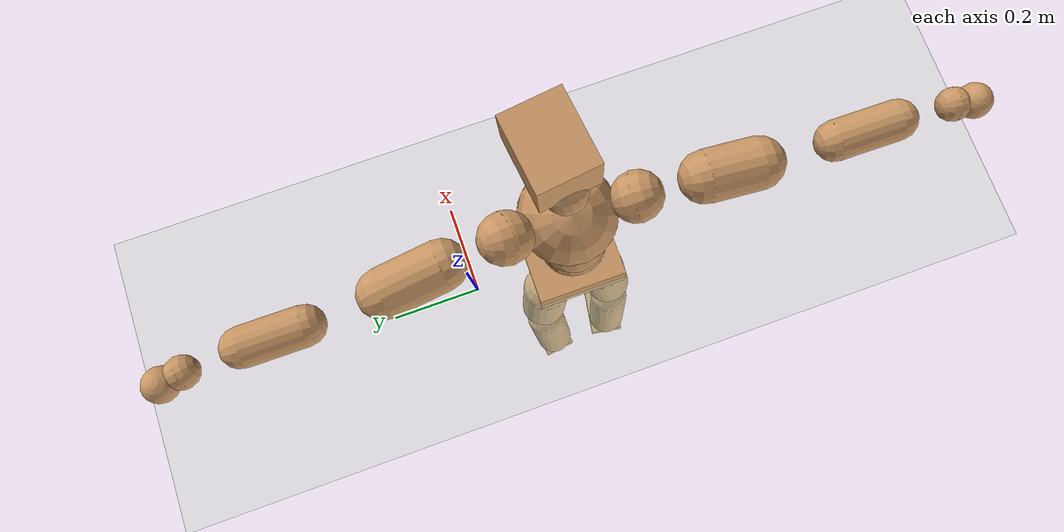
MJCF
<mujoco model="humanoid">
  <compiler coordinate="local" angle="radian"/>
  <default>
    <joint damping="0.0" armature="0.01" stiffness="0.0" limited="true"/>
    <geom conaffinity="1" condim="3" contype="7" margin="0.001" rgba="0.8 0.6 .4 1"/>
  </default>
  <asset>
    <texture type="skybox" builtin="gradient" rgb1=".4 .5 .6" rgb2="0 0 0" width="100" height="100"/>
    <texture builtin="flat" height="1278" mark="cross" markrgb="1 1 1" name="texgeom" random="0.01" rgb1="0.8 0.6 0.4" rgb2="0.8 0.6 0.4" type="cube" width="127"/>
    <texture builtin="checker" height="100" name="texplane" rgb1="0 0 0" rgb2="0.8 0.8 0.8" type="2d" width="100"/>
    <material name="MatPlane" reflectance="0.5" shininess="1" specular="1" texrepeat="60 60" texture="texplane"/>
    <material name="geom" texture="texgeom" texuniform="true"/>
  </asset>
  <worldbody>
    <light cutoff="100" diffuse="1 1 1" dir="-0 0 -1.3" directional="true" exponent="1" pos="0 0 1.3" specular=".1 .1 .1"/>
    <geom conaffinity="1" condim="3" name="floor" pos="0 0 0" rgba="0.8 0.9 0.8 1" size="100 100 .2" type="plane" material="MatPlane"/>
    <body name="Pelvis" pos="-0.0015 -0.23 0.0193">
      <freejoint name="Pelvis"/>
      <geom type="box" contype="1" conaffinity="1" density="5359.375424" pos="-0.0071 0.0000 -0.0133" size="0.0779 0.1028 0.0419" quat="1.0000 0.0000 0.0000 -0.0000" name="Pelvis"/>
      <body name="L_Hip" pos="-0.016 0.0666 -0.0951">
        <joint name="L_Hip_x" type="hinge" pos="0 0 0" axis="1 0 0" stiffness="1600" damping="160" armature="0.02" range="-180.0000 180.0000"/>
        <joint name="L_Hip_y" type="hinge" pos="0 0 0" axis="0 1 0" stiffness="1600" damping="160" armature="0.02" range="-180.0000 180.0000"/>
        <joint name="L_Hip_z" type="hinge" pos="0 0 0" axis="0 0 1" stiffness="1600" damping="160" armature="0.02" range="-180.0000 180.0000"/>
        <geom type="capsule" contype="1" conaffinity="1" density="2040.816327" size="0.0577" fromto="-0.0014 0.0076 -0.0873 -0.0048 0.0258 -0.2983" name="L_Hip"/>
        <body name="L_Knee" pos="-0.0062 0.0334 -0.3857">
          <joint name="L_Knee_x" type="hinge" pos="0 0 0" axis="1 0 0" stiffness="1600" damping="160" armature="0.02" range="-180.0000 180.0000"/>
          <joint name="L_Knee_y" type="hinge" pos="0 0 0" axis="0 1 0" stiffness="1600" damping="160" armature="0.02" range="-180.0000 180.0000"/>
          <joint name="L_Knee_z" type="hinge" pos="0 0 0" axis="0 0 1" stiffness="1600" damping="160" armature="0.02" range="-180.0000 180.0000"/>
          <geom type="capsule" contype="1" conaffinity="1" density="1234.567901" size="0.0521" fromto="-0.0087 -0.0028 -0.0816 -0.0351 -0.0112 -0.3289" name="L_Knee"/>
          <body name="L_Ankle" pos="-0.0438 -0.014 -0.4105">
            <joint name="L_Ankle_x" type="hinge" pos="0 0 0" axis="1 0 0" stiffness="1600" damping="160" armature="0.02" range="-180.0000 180.0000"/>
            <joint name="L_Ankle_y" type="hinge" pos="0 0 0" axis="0 1 0" stiffness="1600" damping="160" armature="0.02" range="-180.0000 180.0000"/>
            <joint name="L_Ankle_z" type="hinge" pos="0 0 0" axis="0 0 1" stiffness="1600" damping="160" armature="0.02" range="-180.0000 180.0000"/>
            <geom type="box" contype="1" conaffinity="1" density="1000.000014" pos="0.0604 0.0090 -0.0287" size="0.0853 0.0454 0.0214" quat="0.9972 0.0000 0.0000 0.0742" name="L_Ankle"/>
            <body name="L_Toe" pos="0.1209 0.0181 -0.0574">
              <joint name="L_Toe_x" type="hinge" pos="0 0 0" axis="1 0 0" stiffness="1000" damping="100" armature="0.02" range="-180.0000 180.0000"/>
              <joint name="L_Toe_y" type="hinge" pos="0 0 0" axis="0 1 0" stiffness="1000" damping="100" armature="0.02" range="-180.0000 180.0000"/>
              <joint name="L_Toe_z" type="hinge" pos="0 0 0" axis="0 0 1" stiffness="1000" damping="100" armature="0.02" range="-180.0000 180.0000"/>
              <geom type="box" contype="1" conaffinity="1" density="8571836.640656" pos="0.0000 0.0000 0.0280" size="0.001 0.0023 0.001" quat="0.9967 0.0000 0.0000 0.0809" name="L_Toe"/>
            </body>
          </body>
        </body>
      </body>
      <body name="R_Hip" pos="-0.0113 -0.0632 -0.0946">
        <joint name="R_Hip_x" type="hinge" pos="0 0 0" axis="1 0 0" stiffness="1600" damping="160" armature="0.02" range="-180.0000 180.0000"/>
        <joint name="R_Hip_y" type="hinge" pos="0 0 0" axis="0 1 0" stiffness="1600" damping="160" armature="0.02" range="-180.0000 180.0000"/>
        <joint name="R_Hip_z" type="hinge" pos="0 0 0" axis="0 0 1" stiffness="1600" damping="160" armature="0.02" range="-180.0000 180.0000"/>
        <geom type="capsule" contype="1" conaffinity="1" density="2040.816327" size="0.0569" fromto="-0.0021 -0.0087 -0.0864 -0.0074 -0.0308 -0.3055" name="R_Hip"/>
        <body name="R_Knee" pos="-0.0094 -0.0395 -0.392">
          <joint name="R_Knee_x" type="hinge" pos="0 0 0" axis="1 0 0" stiffness="1600" damping="160" armature="0.02" range="-180.0000 180.0000"/>
          <joint name="R_Knee_y" type="hinge" pos="0 0 0" axis="0 1 0" stiffness="1600" damping="160" armature="0.02" range="-180.0000 180.0000"/>
          <joint name="R_Knee_z" type="hinge" pos="0 0 0" axis="0 0 1" stiffness="1600" damping="160" armature="0.02" range="-180.0000 180.0000"/>
          <geom type="capsule" contype="1" conaffinity="1" density="1234.567901" size="0.0523" fromto="-0.0082 0.0035 -0.0819 -0.0328 0.0138 -0.3271" name="R_Knee"/>
          <body name="R_Ankle" pos="-0.0411 0.0173 -0.409">
            <joint name="R_Ankle_x" type="hinge" pos="0 0 0" axis="1 0 0" stiffness="1600" damping="160" armature="0.02" range="-180.0000 180.0000"/>
            <joint name="R_Ankle_y" type="hinge" pos="0 0 0" axis="0 1 0" stiffness="1600" damping="160" armature="0.02" range="-180.0000 180.0000"/>
            <joint name="R_Ankle_z" type="hinge" pos="0 0 0" axis="0 0 1" stiffness="1600" damping="160" armature="0.02" range="-180.0000 180.0000"/>
            <geom type="box" contype="1" conaffinity="1" density="999.999968" pos="0.0623 -0.0099 -0.0242" size="0.0874 0.048 0.0206" quat="0.9969 0.0000 0.0000 -0.0785" name="R_Ankle"/>
            <body name="R_Toe" pos="0.1246 -0.0197 -0.0485">
              <joint name="R_Toe_x" type="hinge" pos="0 0 0" axis="1 0 0" stiffness="1000" damping="100" armature="0.02" range="-180.0000 180.0000"/>
              <joint name="R_Toe_y" type="hinge" pos="0 0 0" axis="0 1 0" stiffness="1000" damping="100" armature="0.02" range="-180.0000 180.0000"/>
              <joint name="R_Toe_z" type="hinge" pos="0 0 0" axis="0 0 1" stiffness="1000" damping="100" armature="0.02" range="-180.0000 180.0000"/>
              <geom type="box" contype="1" conaffinity="1" density="8125442.941406" pos="0.0000 0.0000 0.0269" size="0.0009 0.0023 0.0012" quat="0.9976 0.0000 0.0000 -0.0695" name="R_Toe"/>
            </body>
          </body>
        </body>
      </body>
      <body name="Torso" pos="-0.0155 -0.0033 0.1096">
        <joint name="Torso_x" type="hinge" pos="0 0 0" axis="1 0 0" stiffness="2000" damping="200" armature="0.02" range="-180.0000 180.0000"/>
        <joint name="Torso_y" type="hinge" pos="0 0 0" axis="0 1 0" stiffness="2000" damping="200" armature="0.02" range="-180.0000 180.0000"/>
        <joint name="Torso_z" type="hinge" pos="0 0 0" axis="0 0 1" stiffness="2000" damping="200" armature="0.02" range="-180.0000 180.0000"/>
        <geom type="capsule" contype="1" conaffinity="1" density="2040.816327" size="0.0707" fromto="0.0018 0.0023 0.0717 0.0018 0.0024 0.0737" name="Torso"/>
        <body name="Spine" pos="0.0036 0.0047 0.1454">
          <joint name="Spine_x" type="hinge" pos="0 0 0" axis="1 0 0" stiffness="2000" damping="200" armature="0.02" range="-180.0000 180.0000"/>
          <joint name="Spine_y" type="hinge" pos="0 0 0" axis="0 1 0" stiffness="2000" damping="200" armature="0.02" range="-180.0000 180.0000"/>
          <joint name="Spine_z" type="hinge" pos="0 0 0" axis="0 0 1" stiffness="2000" damping="200" armature="0.02" range="-180.0000 180.0000"/>
          <geom type="capsule" contype="1" conaffinity="1" density="2040.816327" size="0.072" fromto="0.0362 0.0034 0.0621 -0.0050 -0.0005 -0.0085" name="Spine"/>
          <body name="Chest" pos="0.0313 0.0029 0.0536">
            <joint name="Chest_x" type="hinge" pos="0 0 0" axis="1 0 0" stiffness="2000" damping="200" armature="0.02" range="-180.0000 180.0000"/>
            <joint name="Chest_y" type="hinge" pos="0 0 0" axis="0 1 0" stiffness="2000" damping="200" armature="0.02" range="-180.0000 180.0000"/>
            <joint name="Chest_z" type="hinge" pos="0 0 0" axis="0 0 1" stiffness="2000" damping="200" armature="0.02" range="-180.0000 180.0000"/>
            <geom type="capsule" contype="1" conaffinity="1" density="2040.816327" size="0.0968" fromto="-0.0275 -0.0004 0.0928 -0.0183 -0.0002 0.0620" name="Chest"/>
            <body name="Neck" pos="-0.054 -0.0009 0.2198">
              <joint name="Neck_x" type="hinge" pos="0 0 0" axis="1 0 0" stiffness="1000" damping="100" armature="0.02" range="-180.0000 180.0000"/>
              <joint name="Neck_y" type="hinge" pos="0 0 0" axis="0 1 0" stiffness="1000" damping="100" armature="0.02" range="-180.0000 180.0000"/>
              <joint name="Neck_z" type="hinge" pos="0 0 0" axis="0 0 1" stiffness="1000" damping="100" armature="0.02" range="-180.0000 180.0000"/>
              <geom type="capsule" contype="1" conaffinity="1" density="1000" size="0.0424" fromto="0.0261 0.0024 0.0320 0.0273 0.0025 0.0336" name="Neck"/>
              <body name="Head" pos="0.0534 0.0048 0.0656">
                <joint name="Head_x" type="hinge" pos="0 0 0" axis="1 0 0" stiffness="1000" damping="100" armature="0.02" range="-180.0000 180.0000"/>
                <joint name="Head_y" type="hinge" pos="0 0 0" axis="0 1 0" stiffness="1000" damping="100" armature="0.02" range="-180.0000 180.0000"/>
                <joint name="Head_z" type="hinge" pos="0 0 0" axis="0 0 1" stiffness="1000" damping="100" armature="0.02" range="-180.0000 180.0000"/>
                <geom type="box" contype="1" conaffinity="1" density="2250.000144" pos="0.0277 0.0034 0.0338" size="0.0748 0.0595 0.0519" quat="0.9981 0.0000 0.0000 0.0613" name="Head"/>
              </body>
            </body>
            <body name="L_Thorax" pos="-0.0394 0.0796 0.1239">
              <joint name="L_Thorax_x" type="hinge" pos="0 0 0" axis="1 0 0" stiffness="1000" damping="100" armature="0.02" range="-180.0000 180.0000"/>
              <joint name="L_Thorax_y" type="hinge" pos="0 0 0" axis="0 1 0" stiffness="1000" damping="100" armature="0.02" range="-180.0000 180.0000"/>
              <joint name="L_Thorax_z" type="hinge" pos="0 0 0" axis="0 0 1" stiffness="1000" damping="100" armature="0.02" range="-180.0000 180.0000"/>
              <geom type="capsule" contype="1" conaffinity="1" density="1000" size="0.0512" fromto="-0.0035 0.0480 0.0174 -0.0030 0.0413 0.0150" name="L_Thorax"/>
              <body name="L_Shoulder" pos="-0.0066 0.0892 0.0324">
                <joint name="L_Shoulder_x" type="hinge" pos="0 0 0" axis="1 0 0" stiffness="1000" damping="100" armature="0.02" range="-720.0000 720.0000"/>
                <joint name="L_Shoulder_y" type="hinge" pos="0 0 0" axis="0 1 0" stiffness="1000" damping="100" armature="0.02" range="-720.0000 720.0000"/>
                <joint name="L_Shoulder_z" type="hinge" pos="0 0 0" axis="0 0 1" stiffness="1000" damping="100" armature="0.02" range="-720.0000 720.0000"/>
                <geom type="capsule" contype="1" conaffinity="1" density="1000" size="0.0488" fromto="-0.0083 0.0783 -0.0040 -0.0203 0.1927 -0.0098" name="L_Shoulder"/>
                <body name="L_Elbow" pos="-0.0286 0.271 -0.0138">
                  <joint name="L_Elbow_x" type="hinge" pos="0 0 0" axis="1 0 0" stiffness="1000" damping="100" armature="0.02" range="-720.0000 720.0000"/>
                  <joint name="L_Elbow_y" type="hinge" pos="0 0 0" axis="0 1 0" stiffness="1000" damping="100" armature="0.02" range="-720.0000 720.0000"/>
                  <joint name="L_Elbow_z" type="hinge" pos="0 0 0" axis="0 0 1" stiffness="1000" damping="100" armature="0.02" range="-720.0000 720.0000"/>
                  <geom type="capsule" contype="1" conaffinity="1" density="1000" size="0.0386" fromto="-0.0002 0.0686 0.0026 -0.0004 0.1826 0.0069" name="L_Elbow"/>
                  <body name="L_Wrist" pos="-0.0006 0.2512 0.0095">
                    <joint name="L_Wrist_x" type="hinge" pos="0 0 0" axis="1 0 0" stiffness="600" damping="60" armature="0.02" range="-180.0000 180.0000"/>
                    <joint name="L_Wrist_y" type="hinge" pos="0 0 0" axis="0 1 0" stiffness="600" damping="60" armature="0.02" range="-180.0000 180.0000"/>
                    <joint name="L_Wrist_z" type="hinge" pos="0 0 0" axis="0 0 1" stiffness="600" damping="60" armature="0.02" range="-180.0000 180.0000"/>
                    <geom type="capsule" contype="1" conaffinity="1" density="1000" size="0.0313" fromto="-0.0068 0.0407 -0.0049 -0.0071 0.0426 -0.0051" name="L_Wrist"/>
                    <body name="L_Hand" pos="-0.0139 0.0833 -0.01">
                      <joint name="L_Hand_x" type="hinge" pos="0 0 0" axis="1 0 0" stiffness="600" damping="60" armature="0.02" range="-180.0000 180.0000"/>
                      <joint name="L_Hand_y" type="hinge" pos="0 0 0" axis="0 1 0" stiffness="600" damping="60" armature="0.02" range="-180.0000 180.0000"/>
                      <joint name="L_Hand_z" type="hinge" pos="0 0 0" axis="0 0 1" stiffness="600" damping="60" armature="0.02" range="-180.0000 180.0000"/>
                      <geom type="sphere" contype="1" conaffinity="1" density="1000" size="0.0335" pos="0.0000 0.0000 0.0000" name="L_Hand"/>
                    </body>
                  </body>
                </body>
              </body>
            </body>
            <body name="R_Thorax" pos="-0.0441 -0.0805 0.1207">
              <joint name="R_Thorax_x" type="hinge" pos="0 0 0" axis="1 0 0" stiffness="1000" damping="100" armature="0.02" range="-180.0000 180.0000"/>
              <joint name="R_Thorax_y" type="hinge" pos="0 0 0" axis="0 1 0" stiffness="1000" damping="100" armature="0.02" range="-180.0000 180.0000"/>
              <joint name="R_Thorax_z" type="hinge" pos="0 0 0" axis="0 0 1" stiffness="1000" damping="100" armature="0.02" range="-180.0000 180.0000"/>
              <geom type="capsule" contype="1" conaffinity="1" density="1000" size="0.0503" fromto="-0.0047 -0.0462 0.0169 -0.0049 -0.0481 0.0176" name="R_Thorax"/>
              <body name="R_Shoulder" pos="-0.0095 -0.0943 0.0344">
                <joint name="R_Shoulder_x" type="hinge" pos="0 0 0" axis="1 0 0" stiffness="1000" damping="100" armature="0.02" range="-720.0000 720.0000"/>
                <joint name="R_Shoulder_y" type="hinge" pos="0 0 0" axis="0 1 0" stiffness="1000" damping="100" armature="0.02" range="-720.0000 720.0000"/>
                <joint name="R_Shoulder_z" type="hinge" pos="0 0 0" axis="0 0 1" stiffness="1000" damping="100" armature="0.02" range="-720.0000 720.0000"/>
                <geom type="capsule" contype="1" conaffinity="1" density="1000" size="0.0512" fromto="-0.0055 -0.0809 -0.0051 -0.0126 -0.1841 -0.0115" name="R_Shoulder"/>
                <body name="R_Elbow" pos="-0.0181 -0.265 -0.0166">
                  <joint name="R_Elbow_x" type="hinge" pos="0 0 0" axis="1 0 0" stiffness="1000" damping="100" armature="0.02" range="-720.0000 720.0000"/>
                  <joint name="R_Elbow_y" type="hinge" pos="0 0 0" axis="0 1 0" stiffness="1000" damping="100" armature="0.02" range="-720.0000 720.0000"/>
                  <joint name="R_Elbow_z" type="hinge" pos="0 0 0" axis="0 0 1" stiffness="1000" damping="100" armature="0.02" range="-720.0000 720.0000"/>
                  <geom type="capsule" contype="1" conaffinity="1" density="1000" size="0.0392" fromto="-0.0014 -0.0691 0.0023 -0.0038 -0.1925 0.0065" name="R_Elbow"/>
                  <body name="R_Wrist" pos="-0.0052 -0.2617 0.0089">
                    <joint name="R_Wrist_x" type="hinge" pos="0 0 0" axis="1 0 0" stiffness="600" damping="60" armature="0.02" range="-180.0000 180.0000"/>
                    <joint name="R_Wrist_y" type="hinge" pos="0 0 0" axis="0 1 0" stiffness="600" damping="60" armature="0.02" range="-180.0000 180.0000"/>
                    <joint name="R_Wrist_z" type="hinge" pos="0 0 0" axis="0 0 1" stiffness="600" damping="60" armature="0.02" range="-180.0000 180.0000"/>
                    <geom type="capsule" contype="1" conaffinity="1" density="1000" size="0.0323" fromto="-0.0054 -0.0416 -0.0037 -0.0056 -0.0436 -0.0039" name="R_Wrist"/>
                    <body name="R_Hand" pos="-0.011 -0.0852 -0.0076">
                      <joint name="R_Hand_x" type="hinge" pos="0 0 0" axis="1 0 0" stiffness="600" damping="60" armature="0.02" range="-180.0000 180.0000"/>
                      <joint name="R_Hand_y" type="hinge" pos="0 0 0" axis="0 1 0" stiffness="600" damping="60" armature="0.02" range="-180.0000 180.0000"/>
                      <joint name="R_Hand_z" type="hinge" pos="0 0 0" axis="0 0 1" stiffness="600" damping="60" armature="0.02" range="-180.0000 180.0000"/>
                      <geom type="sphere" contype="1" conaffinity="1" density="1000" size="0.0341" pos="0.0000 0.0000 0.0000" name="R_Hand"/>
                    </body>
                  </body>
                </body>
              </body>
            </body>
          </body>
        </body>
      </body>
    </body>
  </worldbody>
  <actuator>
    <motor name="L_Hip_x" joint="L_Hip_x" gear="500"/>
    <motor name="L_Hip_y" joint="L_Hip_y" gear="500"/>
    <motor name="L_Hip_z" joint="L_Hip_z" gear="500"/>
    <motor name="L_Knee_x" joint="L_Knee_x" gear="500"/>
    <motor name="L_Knee_y" joint="L_Knee_y" gear="500"/>
    <motor name="L_Knee_z" joint="L_Knee_z" gear="500"/>
    <motor name="L_Ankle_x" joint="L_Ankle_x" gear="500"/>
    <motor name="L_Ankle_y" joint="L_Ankle_y" gear="500"/>
    <motor name="L_Ankle_z" joint="L_Ankle_z" gear="500"/>
    <motor name="L_Toe_x" joint="L_Toe_x" gear="500"/>
    <motor name="L_Toe_y" joint="L_Toe_y" gear="500"/>
    <motor name="L_Toe_z" joint="L_Toe_z" gear="500"/>
    <motor name="R_Hip_x" joint="R_Hip_x" gear="500"/>
    <motor name="R_Hip_y" joint="R_Hip_y" gear="500"/>
    <motor name="R_Hip_z" joint="R_Hip_z" gear="500"/>
    <motor name="R_Knee_x" joint="R_Knee_x" gear="500"/>
    <motor name="R_Knee_y" joint="R_Knee_y" gear="500"/>
    <motor name="R_Knee_z" joint="R_Knee_z" gear="500"/>
    <motor name="R_Ankle_x" joint="R_Ankle_x" gear="500"/>
    <motor name="R_Ankle_y" joint="R_Ankle_y" gear="500"/>
    <motor name="R_Ankle_z" joint="R_Ankle_z" gear="500"/>
    <motor name="R_Toe_x" joint="R_Toe_x" gear="500"/>
    <motor name="R_Toe_y" joint="R_Toe_y" gear="500"/>
    <motor name="R_Toe_z" joint="R_Toe_z" gear="500"/>
    <motor name="Torso_x" joint="Torso_x" gear="500"/>
    <motor name="Torso_y" joint="Torso_y" gear="500"/>
    <motor name="Torso_z" joint="Torso_z" gear="500"/>
    <motor name="Spine_x" joint="Spine_x" gear="500"/>
    <motor name="Spine_y" joint="Spine_y" gear="500"/>
    <motor name="Spine_z" joint="Spine_z" gear="500"/>
    <motor name="Chest_x" joint="Chest_x" gear="500"/>
    <motor name="Chest_y" joint="Chest_y" gear="500"/>
    <motor name="Chest_z" joint="Chest_z" gear="500"/>
    <motor name="Neck_x" joint="Neck_x" gear="500"/>
    <motor name="Neck_y" joint="Neck_y" gear="500"/>
    <motor name="Neck_z" joint="Neck_z" gear="500"/>
    <motor name="Head_x" joint="Head_x" gear="500"/>
    <motor name="Head_y" joint="Head_y" gear="500"/>
    <motor name="Head_z" joint="Head_z" gear="500"/>
    <motor name="L_Thorax_x" joint="L_Thorax_x" gear="500"/>
    <motor name="L_Thorax_y" joint="L_Thorax_y" gear="500"/>
    <motor name="L_Thorax_z" joint="L_Thorax_z" gear="500"/>
    <motor name="L_Shoulder_x" joint="L_Shoulder_x" gear="500"/>
    <motor name="L_Shoulder_y" joint="L_Shoulder_y" gear="500"/>
    <motor name="L_Shoulder_z" joint="L_Shoulder_z" gear="500"/>
    <motor name="L_Elbow_x" joint="L_Elbow_x" gear="500"/>
    <motor name="L_Elbow_y" joint="L_Elbow_y" gear="500"/>
    <motor name="L_Elbow_z" joint="L_Elbow_z" gear="500"/>
    <motor name="L_Wrist_x" joint="L_Wrist_x" gear="500"/>
    <motor name="L_Wrist_y" joint="L_Wrist_y" gear="500"/>
    <motor name="L_Wrist_z" joint="L_Wrist_z" gear="500"/>
    <motor name="L_Hand_x" joint="L_Hand_x" gear="500"/>
    <motor name="L_Hand_y" joint="L_Hand_y" gear="500"/>
    <motor name="L_Hand_z" joint="L_Hand_z" gear="500"/>
    <motor name="R_Thorax_x" joint="R_Thorax_x" gear="500"/>
    <motor name="R_Thorax_y" joint="R_Thorax_y" gear="500"/>
    <motor name="R_Thorax_z" joint="R_Thorax_z" gear="500"/>
    <motor name="R_Shoulder_x" joint="R_Shoulder_x" gear="500"/>
    <motor name="R_Shoulder_y" joint="R_Shoulder_y" gear="500"/>
    <motor name="R_Shoulder_z" joint="R_Shoulder_z" gear="500"/>
    <motor name="R_Elbow_x" joint="R_Elbow_x" gear="500"/>
    <motor name="R_Elbow_y" joint="R_Elbow_y" gear="500"/>
    <motor name="R_Elbow_z" joint="R_Elbow_z" gear="500"/>
    <motor name="R_Wrist_x" joint="R_Wrist_x" gear="500"/>
    <motor name="R_Wrist_y" joint="R_Wrist_y" gear="500"/>
    <motor name="R_Wrist_z" joint="R_Wrist_z" gear="500"/>
    <motor name="R_Hand_x" joint="R_Hand_x" gear="500"/>
    <motor name="R_Hand_y" joint="R_Hand_y" gear="500"/>
    <motor name="R_Hand_z" joint="R_Hand_z" gear="500"/>
  </actuator>
  <contact>
    <exclude body1="Torso" body2="Chest"/>
    <exclude body1="Head" body2="Chest"/>
    <exclude body1="R_Knee" body2="R_Toe"/>
    <exclude body1="R_Knee" body2="L_Ankle"/>
    <exclude body1="R_Knee" body2="L_Toe"/>
    <exclude body1="L_Knee" body2="L_Toe"/>
    <exclude body1="L_Knee" body2="R_Ankle"/>
    <exclude body1="L_Knee" body2="R_Toe"/>
    <exclude body1="L_Shoulder" body2="Chest"/>
    <exclude body1="R_Shoulder" body2="Chest"/>
  </contact>
  <sensor/>
  <size njmax="700" nconmax="700"/>
</mujoco>
